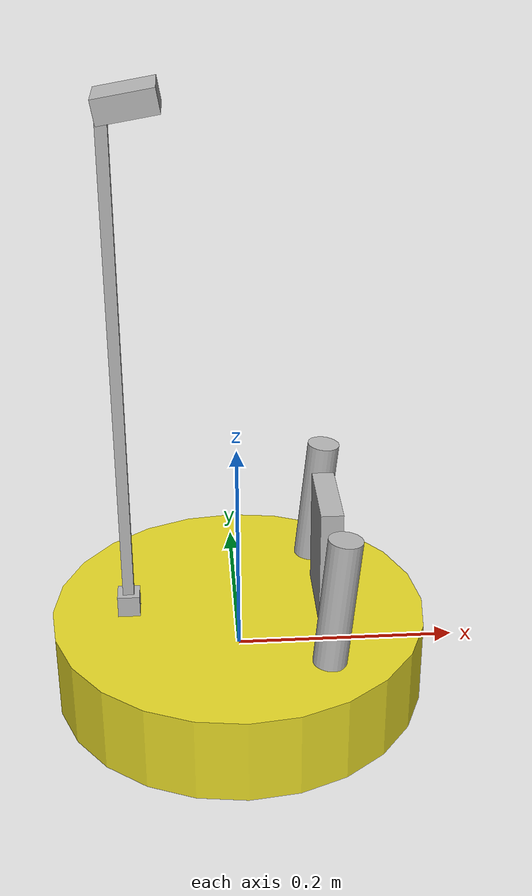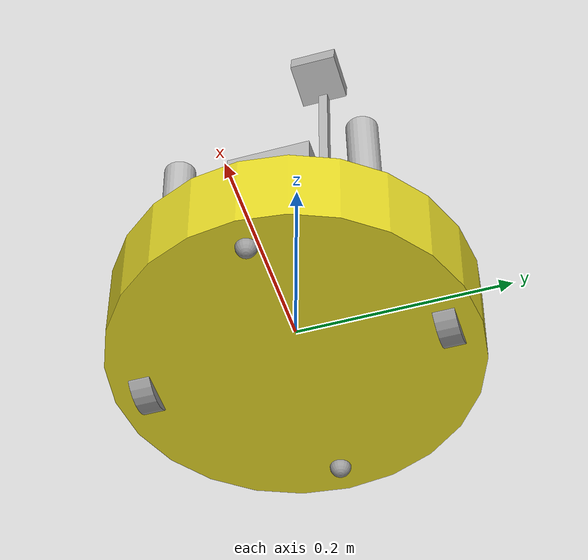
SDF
<sdf version='1.6'>
  <model name='iRobot'>
    <link name='base_link'>
      <pose frame=''>0 0 0 0 -0 0</pose>
      <inertial>
        <pose frame=''>-0.009097 0 0.022727 0 -0 0</pose>
        <mass>11.0032</mass>
        <inertia>
          <ixx>0.217388</ixx>
          <ixy>1.05879e-22</ixy>
          <ixz>0.0227331</ixz>
          <iyy>0.226449</iyy>
          <iyz>-3.36272e-19</iyz>
          <izz>0.298143</izz>
        </inertia>
      </inertial>
      <collision name='base_link_collision'>
        <pose frame=''>0 0 0 0 -0 0</pose>
        <geometry>
          <cylinder>
            <length>0.08</length>
            <radius>0.17</radius>
          </cylinder>
        </geometry>
        <surface>
          <contact>
            <ode/>
          </contact>
          <friction>
            <ode/>
          </friction>
        </surface>
      </collision>
      <collision name='base_link_fixed_joint_lump__left_axis_collision_1'>
        <pose frame=''>0 0.14 -0.02 -1.5708 0 0</pose>
        <geometry>
          <cylinder>
            <length>0.02</length>
            <radius>0.0025</radius>
          </cylinder>
        </geometry>
      </collision>
      <collision name='base_link_fixed_joint_lump__right_axis_collision_2'>
        <pose frame=''>0 -0.14 -0.02 -1.5708 0 0</pose>
        <geometry>
          <cylinder>
            <length>0.02</length>
            <radius>0.0025</radius>
          </cylinder>
        </geometry>
      </collision>
      <collision name='base_link_fixed_joint_lump__box_collision_3'>
        <pose frame=''>-0.1 0 0.25 0 -0 0</pose>
        <geometry>
          <box>
            <size>0.01 0.01 0.5</size>
          </box>
        </geometry>
      </collision>
      <collision name='base_link_fixed_joint_lump__camera_link_collision_4'>
        <pose frame=''>0.08 0 0.1 0 -0 0</pose>
        <geometry>
          <box>
            <size>0.02 0.08 0.11</size>
          </box>
        </geometry>
        <surface>
          <contact>
            <ode/>
          </contact>
          <friction>
            <ode/>
          </friction>
        </surface>
      </collision>
      <collision name='base_link_fixed_joint_lump__camera_up_link_collision_5'>
        <pose frame=''>-0.08 0 0.5 0 1.4 0</pose>
        <geometry>
          <box>
            <size>0.02 0.05 0.05</size>
          </box>
        </geometry>
        <surface>
          <contact>
            <ode/>
          </contact>
          <friction>
            <ode/>
          </friction>
        </surface>
      </collision>
      <collision name='base_link_fixed_joint_lump__hokuyo_link_collision_6'>
        <pose frame=''>0.08 0.09 0.1 0 -0.1 3.11</pose>
        <geometry>
          <cylinder>
            <length>0.12</length>
            <radius>0.015</radius>
          </cylinder>
        </geometry>
        <surface>
          <contact>
            <ode/>
          </contact>
          <friction>
            <ode/>
          </friction>
        </surface>
      </collision>
      <collision name='base_link_fixed_joint_lump__hokuyo_link_2_collision_7'>
        <pose frame=''>0.08 -0.09 0.1 0 -0.1 -2.83319</pose>
        <geometry>
          <cylinder>
            <length>0.12</length>
            <radius>0.015</radius>
          </cylinder>
        </geometry>
        <surface>
          <contact>
            <ode/>
          </contact>
          <friction>
            <ode/>
          </friction>
        </surface>
      </collision>
      <collision name='base_link_fixed_joint_lump__imu_sensor_link_collision_8'>
        <pose frame=''>-0.1 0 0.05 0 -0 0</pose>
        <geometry>
          <box>
            <size>0.02 0.02 0.02</size>
          </box>
        </geometry>
        <surface>
          <contact>
            <ode/>
          </contact>
          <friction>
            <ode/>
          </friction>
        </surface>
      </collision>
      <visual name='base_link_fixed_joint_lump__chassis_visual'>
        <pose frame=''>0 0 0 0 -0 0</pose>
        <geometry>
          <cylinder>
            <length>0.08</length>
            <radius>0.17</radius>
          </cylinder>
        </geometry>
        <material>
          <script>
            <name>Gazebo/Yellow</name>
            <uri>file://media/materials/scripts/gazebo.material</uri>
          </script>
        </material>
      </visual>
      <visual name='base_link_fixed_joint_lump__left_axis_visual_1'>
        <pose frame=''>0 0.14 -0.02 -1.5708 0 0</pose>
        <geometry>
          <cylinder>
            <length>0.02</length>
            <radius>0.0025</radius>
          </cylinder>
        </geometry>
      </visual>
      <visual name='base_link_fixed_joint_lump__right_axis_visual_2'>
        <pose frame=''>0 -0.14 -0.02 -1.5708 0 0</pose>
        <geometry>
          <cylinder>
            <length>0.02</length>
            <radius>0.0025</radius>
          </cylinder>
        </geometry>
      </visual>
      <visual name='base_link_fixed_joint_lump__box_visual_3'>
        <pose frame=''>-0.1 0 0.25 0 -0 0</pose>
        <geometry>
          <box>
            <size>0.01 0.01 0.5</size>
          </box>
        </geometry>
      </visual>
      <visual name='base_link_fixed_joint_lump__camera_link_visual_4'>
        <pose frame=''>0.08 0 0.1 0 -0 0</pose>
        <geometry>
          <box>
            <size>0.02 0.08 0.11</size>
          </box>
        </geometry>
        <material>
          <script>
            <uri>__default__</uri>
            <name>__default__</name>
          </script>
        </material>
      </visual>
      <visual name='base_link_fixed_joint_lump__camera_up_link_visual_5'>
        <pose frame=''>-0.08 0 0.5 0 1.4 0</pose>
        <geometry>
          <box>
            <size>0.02 0.05 0.05</size>
          </box>
        </geometry>
        <material>
          <script>
            <uri>__default__</uri>
            <name>__default__</name>
          </script>
        </material>
      </visual>
      <visual name='base_link_fixed_joint_lump__hokuyo_link_visual_6'>
        <pose frame=''>0.08 0.09 0.1 0 -0.1 3.11</pose>
        <geometry>
          <cylinder>
            <length>0.12</length>
            <radius>0.015</radius>
          </cylinder>
        </geometry>
        <material>
          <script>
            <uri>__default__</uri>
            <name>__default__</name>
          </script>
        </material>
      </visual>
      <visual name='base_link_fixed_joint_lump__hokuyo_link_2_visual_7'>
        <pose frame=''>0.08 -0.09 0.1 0 -0.1 -2.83319</pose>
        <geometry>
          <cylinder>
            <length>0.12</length>
            <radius>0.015</radius>
          </cylinder>
        </geometry>
        <material>
          <script>
            <uri>__default__</uri>
            <name>__default__</name>
          </script>
        </material>
      </visual>
      <visual name='base_link_fixed_joint_lump__imu_sensor_link_visual_8'>
        <pose frame=''>-0.1 0 0.05 0 -0 0</pose>
        <geometry>
          <box>
            <size>0.02 0.02 0.02</size>
          </box>
        </geometry>
        <material>
          <script>
            <uri>__default__</uri>
            <name>__default__</name>
          </script>
        </material>
      </visual>
      <velocity_decay/>
      <sensor name='irobot_bumper_sensor' type='contact'>
        <always_on>1</always_on>
        <update_rate>100</update_rate>
        <contact>
          <collision>base_link_collision</collision>
          <topic>__default_topic__</topic>
        </contact>
        <plugin name='base_link_gazebo_ros_bumper_controller' filename='libgazebo_ros_bumper.so'>
          <alwaysOn>true</alwaysOn>
          <updateRate>100.0</updateRate>
          <bumperTopicName>irobot_bumper</bumperTopicName>
          <frameName>base_link</frameName>
        </plugin>
      </sensor>
      <velocity_decay/>
      <velocity_decay/>
      <velocity_decay/>
      <sensor name='camera' type='camera'>
        <update_rate>30</update_rate>
        <camera name='head'>
          <horizontal_fov>1.39626</horizontal_fov>
          <image>
            <width>640</width>
            <height>480</height>
            <format>R8G8B8</format>
          </image>
          <clip>
            <near>0.02</near>
            <far>300</far>
          </clip>
          <noise>
            <type>gaussian</type>
            <mean>0</mean>
            <stddev>0.007</stddev>
          </noise>
        </camera>
        <plugin name='camera_controller' filename='libgazebo_ros_camera.so'>
          <alwaysOn>true</alwaysOn>
          <updateRate>0.0</updateRate>
          <cameraName>iRobot/camera</cameraName>
          <imageTopicName>image_raw</imageTopicName>
          <cameraInfoTopicName>camera_info</cameraInfoTopicName>
          <frameName>camera_link</frameName>
          <hackBaseline>0.07</hackBaseline>
          <distortionK1>0.0</distortionK1>
          <distortionK2>0.0</distortionK2>
          <distortionK3>0.0</distortionK3>
          <distortionT1>0.0</distortionT1>
          <distortionT2>0.0</distortionT2>
        </plugin>
        <pose frame=''>0.08 0 0.1 0 -0 0</pose>
      </sensor>
      <velocity_decay/>
      <sensor name='camera' type='camera'>
        <update_rate>30</update_rate>
        <camera name='head'>
          <horizontal_fov>1.39626</horizontal_fov>
          <image>
            <width>640</width>
            <height>480</height>
            <format>R8G8B8</format>
          </image>
          <clip>
            <near>0.02</near>
            <far>300</far>
          </clip>
          <noise>
            <type>gaussian</type>
            <mean>0</mean>
            <stddev>0.007</stddev>
          </noise>
        </camera>
        <plugin name='camera_up_controller' filename='libgazebo_ros_camera.so'>
          <alwaysOn>true</alwaysOn>
          <updateRate>0.0</updateRate>
          <cameraName>iRobot/camera_up</cameraName>
          <imageTopicName>image_raw</imageTopicName>
          <cameraInfoTopicName>camera_info</cameraInfoTopicName>
          <frameName>camera_up_link</frameName>
          <hackBaseline>0.07</hackBaseline>
          <distortionK1>0.0</distortionK1>
          <distortionK2>0.0</distortionK2>
          <distortionK3>0.0</distortionK3>
          <distortionT1>0.0</distortionT1>
          <distortionT2>0.0</distortionT2>
        </plugin>
        <pose frame=''>-0.08 0 0.5 0 1.4 0</pose>
      </sensor>
      <velocity_decay/>
      <gravity>1</gravity>
      <sensor name='head_hokuyo_sensor' type='ray'>
        <visualize>1</visualize>
        <update_rate>40</update_rate>
        <ray>
          <scan>
            <horizontal>
              <samples>2</samples>
              <resolution>1</resolution>
              <min_angle>-3.14</min_angle>
              <max_angle>3.14</max_angle>
            </horizontal>
          </scan>
          <range>
            <min>0.2</min>
            <max>40</max>
            <resolution>0.025</resolution>
          </range>
          <noise>
            <type>gaussian</type>
            <mean>0</mean>
            <stddev>0</stddev>
          </noise>
        </ray>
        <plugin name='gazebo_ros_head_hokuyo_controller' filename='libgazebo_ros_laser.so'>
          <topicName>/laser_scan</topicName>
          <frameName>hokuyo_link</frameName>
        </plugin>
        <pose frame=''>0.08 0.09 0.1 0 -0.1 3.11</pose>
      </sensor>
      <gravity>1</gravity>
      <velocity_decay/>
      <gravity>1</gravity>
      <sensor name='head_hokuyo_sensor' type='ray'>
        <visualize>1</visualize>
        <update_rate>40</update_rate>
        <ray>
          <scan>
            <horizontal>
              <samples>2</samples>
              <resolution>1</resolution>
              <min_angle>-3.14</min_angle>
              <max_angle>3.14</max_angle>
            </horizontal>
          </scan>
          <range>
            <min>0.12</min>
            <max>3.5</max>
            <resolution>0.015</resolution>
          </range>
          <noise>
            <type>gaussian</type>
            <mean>0</mean>
            <stddev>0.01</stddev>
          </noise>
        </ray>
        <plugin name='gazebo_ros_head_hokuyo_2_controller' filename='libgazebo_ros_laser.so'>
          <topicName>/laser_scan_2</topicName>
          <frameName>hokuyo_link_2</frameName>
        </plugin>
        <pose frame=''>0.08 -0.09 0.1 0 -0.1 -2.83319</pose>
      </sensor>
      <gravity>1</gravity>
      <velocity_decay/>
      <gravity>1</gravity>
      <sensor name='imu_sensor' type='imu'>
        <always_on>1</always_on>
        <update_rate>1000</update_rate>
        <visualize>1</visualize>
        <topic>__default_topic__</topic>
        <plugin name='imu_plugin' filename='libgazebo_ros_imu_sensor.so'>
          <topicName>imu_data</topicName>
          <bodyName>imu_sensor_link</bodyName>
          <updateRateHZ>10.0</updateRateHZ>
          <gaussianNoise>0.0</gaussianNoise>
          <xyzOffset>0 0 0</xyzOffset>
          <rpyOffset>0 0 0</rpyOffset>
          <frameName>imu_sensor_link</frameName>
        </plugin>
        <pose frame=''>-0.1 0 0.05 0 -0 0</pose>
      </sensor>
    </link>
    <link name='left_wheel_link'>
      <pose frame=''>0 0.14 -0.02 0 -0 0</pose>
      <inertial>
        <pose frame=''>0 0.01 0 -1.5708 0 0</pose>
        <mass>0.5</mass>
        <inertia>
          <ixx>0.000129167</ixx>
          <ixy>0</ixy>
          <ixz>0</ixz>
          <iyy>0.000129167</iyy>
          <iyz>0</iyz>
          <izz>3.75e-05</izz>
        </inertia>
      </inertial>
      <collision name='left_wheel_link_collision'>
        <pose frame=''>0 0 0 -1.5708 0 0</pose>
        <geometry>
          <cylinder>
            <length>0.02</length>
            <radius>0.03</radius>
          </cylinder>
        </geometry>
        <surface>
          <contact>
            <ode>
              <kp>1e+07</kp>
              <kd>1</kd>
              <min_depth>0.0001</min_depth>
            </ode>
          </contact>
          <friction>
            <ode>
              <mu>50</mu>
              <mu2>10</mu2>
              <fdir1>1 0 0</fdir1>
            </ode>
          </friction>
        </surface>
        <max_contacts>1</max_contacts>
      </collision>
      <visual name='left_wheel_link_visual'>
        <pose frame=''>0 0 0 -1.5708 0 0</pose>
        <geometry>
          <cylinder>
            <length>0.02</length>
            <radius>0.03</radius>
          </cylinder>
        </geometry>
        <material>
          <script>
            <name>Gazebo/Grey</name>
            <uri>file://media/materials/scripts/gazebo.material</uri>
          </script>
        </material>
      </visual>
      <gravity>1</gravity>
      <velocity_decay/>
      <gravity>1</gravity>
    </link>
    <joint name='left_wheel_rot_joint' type='revolute'>
      <child>left_wheel_link</child>
      <parent>base_link</parent>
      <axis>
        <xyz>0 1 0</xyz>
        <limit>
          <lower>-1e+16</lower>
          <upper>1e+16</upper>
        </limit>
        <dynamics>
          <spring_reference>0</spring_reference>
          <spring_stiffness>0</spring_stiffness>
        </dynamics>
        <use_parent_model_frame>1</use_parent_model_frame>
      </axis>
    </joint>
    <link name='right_wheel_link'>
      <pose frame=''>0 -0.14 -0.02 0 -0 0</pose>
      <inertial>
        <pose frame=''>0 0.01 0 -1.5708 0 0</pose>
        <mass>0.5</mass>
        <inertia>
          <ixx>0.000129167</ixx>
          <ixy>0</ixy>
          <ixz>0</ixz>
          <iyy>0.000129167</iyy>
          <iyz>0</iyz>
          <izz>3.75e-05</izz>
        </inertia>
      </inertial>
      <collision name='right_wheel_link_collision'>
        <pose frame=''>0 0 0 -1.5708 0 0</pose>
        <geometry>
          <cylinder>
            <length>0.02</length>
            <radius>0.03</radius>
          </cylinder>
        </geometry>
        <surface>
          <contact>
            <ode>
              <kp>1e+07</kp>
              <kd>1</kd>
              <min_depth>0.0001</min_depth>
            </ode>
          </contact>
          <friction>
            <ode>
              <mu>50</mu>
              <mu2>10</mu2>
              <fdir1>1 0 0</fdir1>
            </ode>
          </friction>
        </surface>
        <max_contacts>1</max_contacts>
      </collision>
      <visual name='right_wheel_link_visual'>
        <pose frame=''>0 0 0 -1.5708 0 0</pose>
        <geometry>
          <cylinder>
            <length>0.02</length>
            <radius>0.03</radius>
          </cylinder>
        </geometry>
        <material>
          <script>
            <name>Gazebo/Grey</name>
            <uri>file://media/materials/scripts/gazebo.material</uri>
          </script>
        </material>
      </visual>
      <gravity>1</gravity>
      <velocity_decay/>
      <gravity>1</gravity>
    </link>
    <joint name='right_wheel_rot_joint' type='revolute'>
      <child>right_wheel_link</child>
      <parent>base_link</parent>
      <axis>
        <xyz>0 1 0</xyz>
        <limit>
          <lower>-1e+16</lower>
          <upper>1e+16</upper>
        </limit>
        <dynamics>
          <spring_reference>0</spring_reference>
          <spring_stiffness>0</spring_stiffness>
        </dynamics>
        <use_parent_model_frame>1</use_parent_model_frame>
      </axis>
    </joint>
    <link name='sphere1'>
      <pose frame=''>0.14 0 -0.04 0 -0 0</pose>
      <inertial>
        <pose frame=''>0 0 0 0 -0 0</pose>
        <mass>0.3</mass>
        <inertia>
          <ixx>1.2e-05</ixx>
          <ixy>0</ixy>
          <ixz>0</ixz>
          <iyy>1.2e-05</iyy>
          <iyz>0</iyz>
          <izz>1.2e-05</izz>
        </inertia>
      </inertial>
      <collision name='sphere1_collision'>
        <pose frame=''>0 0 0 0 -0 0</pose>
        <geometry>
          <sphere>
            <radius>0.01</radius>
          </sphere>
        </geometry>
        <surface>
          <contact>
            <ode>
              <kp>1e+07</kp>
              <kd>1</kd>
              <min_depth>0.0001</min_depth>
            </ode>
          </contact>
          <friction>
            <ode>
              <mu>0</mu>
              <mu2>0</mu2>
              <fdir1>1 0 0</fdir1>
            </ode>
          </friction>
        </surface>
        <max_contacts>1</max_contacts>
      </collision>
      <visual name='sphere1_visual'>
        <pose frame=''>0 0 0 0 -0 0</pose>
        <geometry>
          <sphere>
            <radius>0.01</radius>
          </sphere>
        </geometry>
        <material>
          <script>
            <name>Gazebo/Grey</name>
            <uri>file://media/materials/scripts/gazebo.material</uri>
          </script>
        </material>
      </visual>
      <gravity>1</gravity>
      <velocity_decay/>
      <gravity>1</gravity>
    </link>
    <joint name='sphere_joint1' type='revolute'>
      <child>sphere1</child>
      <parent>base_link</parent>
      <axis>
        <xyz>0 0 1</xyz>
        <limit>
          <lower>0</lower>
          <upper>0</upper>
          <effort>100</effort>
          <velocity>100</velocity>
        </limit>
        <dynamics>
          <spring_reference>0</spring_reference>
          <spring_stiffness>0</spring_stiffness>
        </dynamics>
        <use_parent_model_frame>1</use_parent_model_frame>
      </axis>
    </joint>
    <link name='sphere2'>
      <pose frame=''>-0.14 0 -0.04 0 -0 0</pose>
      <inertial>
        <pose frame=''>0 0 0 0 -0 0</pose>
        <mass>0.3</mass>
        <inertia>
          <ixx>1.2e-05</ixx>
          <ixy>0</ixy>
          <ixz>0</ixz>
          <iyy>1.2e-05</iyy>
          <iyz>0</iyz>
          <izz>1.2e-05</izz>
        </inertia>
      </inertial>
      <collision name='sphere2_collision'>
        <pose frame=''>0 0 0 0 -0 0</pose>
        <geometry>
          <sphere>
            <radius>0.01</radius>
          </sphere>
        </geometry>
        <surface>
          <contact>
            <ode>
              <kp>1e+07</kp>
              <kd>1</kd>
              <min_depth>0.0001</min_depth>
            </ode>
          </contact>
          <friction>
            <ode>
              <mu>0</mu>
              <mu2>0</mu2>
              <fdir1>1 0 0</fdir1>
            </ode>
          </friction>
        </surface>
        <max_contacts>1</max_contacts>
      </collision>
      <visual name='sphere2_visual'>
        <pose frame=''>0 0 0 0 -0 0</pose>
        <geometry>
          <sphere>
            <radius>0.01</radius>
          </sphere>
        </geometry>
        <material>
          <script>
            <name>Gazebo/Grey</name>
            <uri>file://media/materials/scripts/gazebo.material</uri>
          </script>
        </material>
      </visual>
      <gravity>1</gravity>
      <velocity_decay/>
      <gravity>1</gravity>
    </link>
    <joint name='sphere_joint2' type='revolute'>
      <child>sphere2</child>
      <parent>base_link</parent>
      <axis>
        <xyz>0 0 1</xyz>
        <limit>
          <lower>0</lower>
          <upper>0</upper>
          <effort>100</effort>
          <velocity>100</velocity>
        </limit>
        <dynamics>
          <spring_reference>0</spring_reference>
          <spring_stiffness>0</spring_stiffness>
        </dynamics>
        <use_parent_model_frame>1</use_parent_model_frame>
      </axis>
    </joint>
    <static>0</static>
    <plugin name='differential_drive_controller' filename='libgazebo_ros_diff_drive.so'>
      <rosDebugLevel>Debug</rosDebugLevel>
      <publishWheelTF>false</publishWheelTF>
      <legacyMode>false</legacyMode>
      <publishWheelJointState>true</publishWheelJointState>
      <alwaysOn>true</alwaysOn>
      <leftJoint>left_wheel_rot_joint</leftJoint>
      <rightJoint>right_wheel_rot_joint</rightJoint>
      <wheelSeparation>0.28</wheelSeparation>
      <wheelDiameter>0.06</wheelDiameter>
      <torque>20</torque>
      <wheelAcceleration>1.8</wheelAcceleration>
      <commandTopic>cmd_vel</commandTopic>
      <odometryTopic>odom</odometryTopic>
      <odometryFrame>odom</odometryFrame>
      <odometrySource>encoder</odometrySource>
      <robotBaseFrame>base_link</robotBaseFrame>
      <updateRate>10.0</updateRate>
    </plugin>
    <plugin name='joint_state_publisher' filename='libgazebo_ros_joint_state_publisher.so'>
      <jointName>left_wheel_rot_joint, right_wheel_rot_joint</jointName>
      <updateRate>10.0</updateRate>
      <alwaysOn>true</alwaysOn>
    </plugin>
    <plugin name='imu_plugin' filename='libgazebo_ros_imu.so'>
      <bodyName>base_link</bodyName>
      <updateRate>100.0</updateRate>
      <topicName>imu_data</topicName>
      <serviceName>imu_service</serviceName>
      <gaussianNoise>0.1</gaussianNoise>
      <frameName>base_link</frameName>
      <xyzOffset>0.1 0 -0.05</xyzOffset>
      <rpyOffset>0 -0 0</rpyOffset>
    </plugin>
  </model>
</sdf>
